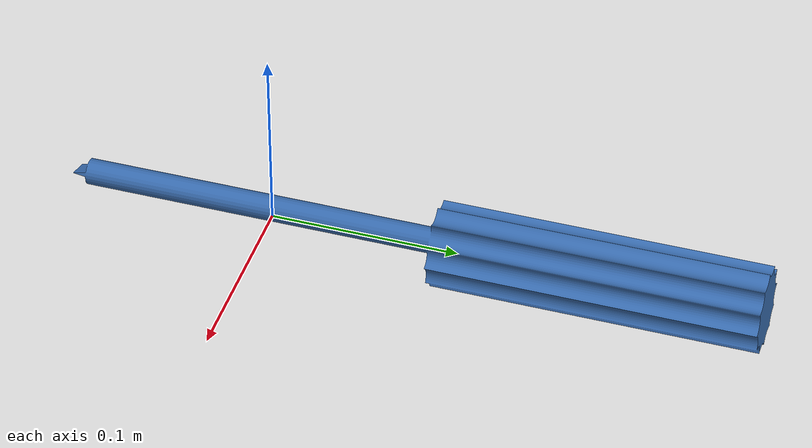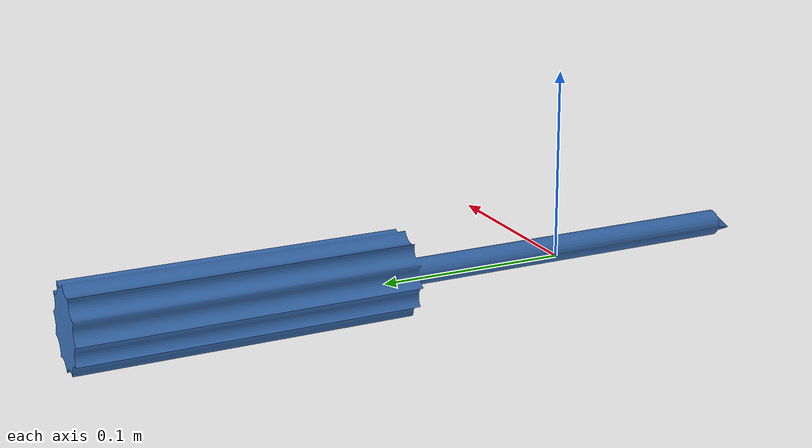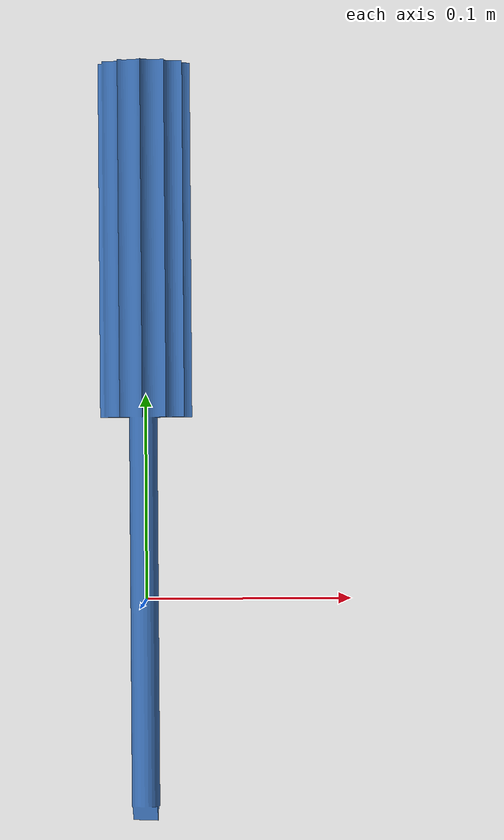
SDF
<sdf version="1.6">
  <model name="screwdriver1_4">
    <link name="link">
      <pose frame="">-0 0 0.005 0 -0 0</pose>
      <inertial>
        <mass>0.5</mass>
        <inertia>
          <ixx>0.005772513795551587</ixx>
          <ixy>0</ixy>
          <ixz>0</ixz>
          <iyy>0.005774579453784375</iyy>
          <iyz>0</iyz>
          <izz>0.00016957549516908752</izz>
        </inertia>
        <pose frame="">-4.737500000000323e-05 0.07694569499999997 -0.0002395199999999982 1.57 0 3.14</pose>
      </inertial>
      <self_collide>0</self_collide>
      <kinematic>0</kinematic>
      <gravity>1</gravity>
      <visual name="visual">
        <geometry>
          <mesh>
            <uri>/home/zisu/simulator/siemens_challenge/sim_world/toolbox/screwdriver1_4.dae</uri>
          </mesh>
        </geometry>
        <pose frame="">0 0 0 0 -0 0</pose>
        <transparency>0</transparency>
        <cast_shadows>0</cast_shadows>
      </visual>
      <collision name="collision">
        <laser_retro>0</laser_retro>
        <max_contacts>10</max_contacts>
        <pose frame="">-4.737500000000323e-05 0.07694569499999997 -0.0002395199999999982 1.57 0 3.14</pose>
        <geometry>
          <box>
            <size>0.04538385 0.04483434 0.36949995</size>
          </box>
        </geometry>
        <surface>
          <friction>
            <ode>
              <mu>1</mu>
              <mu2>1</mu2>
              <fdir1>0 0 0</fdir1>
              <slip1>0</slip1>
              <slip2>0</slip2>
            </ode>
            <torsional>
              <coefficient>1</coefficient>
              <patch_radius>0</patch_radius>
              <surface_radius>0.05</surface_radius>
              <use_patch_radius>0</use_patch_radius>
              <ode>
                <slip>0</slip>
              </ode>
            </torsional>
          </friction>
          <bounce>
            <restitution_coefficient>0</restitution_coefficient>
            <threshold>1e+06</threshold>
          </bounce>
          <contact>
            <collide_without_contact>0</collide_without_contact>
            <collide_without_contact_bitmask>1</collide_without_contact_bitmask>
            <collide_bitmask>1</collide_bitmask>
            <ode>
              <soft_cfm>0</soft_cfm>
              <soft_erp>0.2</soft_erp>
              <kp>100000</kp>
              <kd>1</kd>
              <max_vel>1</max_vel>
              <min_depth>0.001</min_depth>
            </ode>
            <bullet>
              <split_impulse>1</split_impulse>
              <split_impulse_penetration_threshold>-0.01</split_impulse_penetration_threshold>
              <soft_cfm>0</soft_cfm>
              <soft_erp>0.2</soft_erp>
              <kp>100000</kp>
              <kd>1</kd>
            </bullet>
          </contact>
        </surface>
      </collision>
    </link>
    <static>0</static>
    <allow_auto_disable>1</allow_auto_disable>
  </model>
</sdf>
